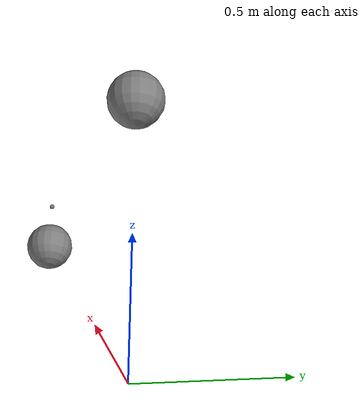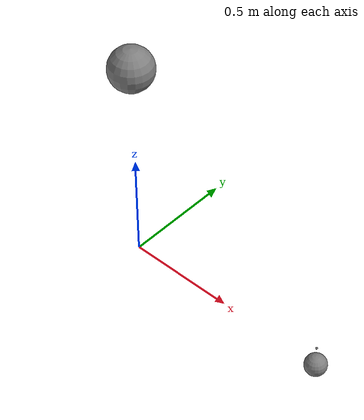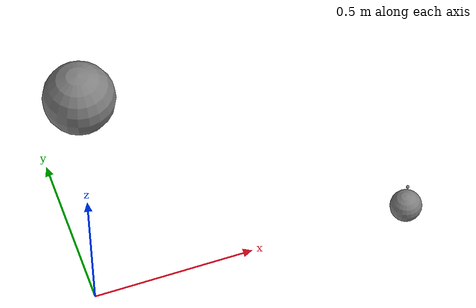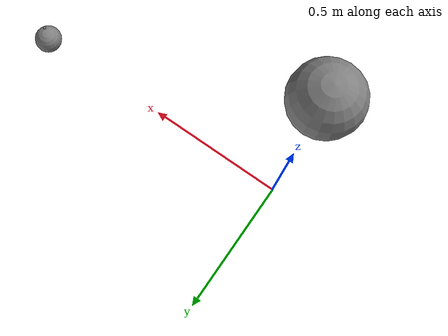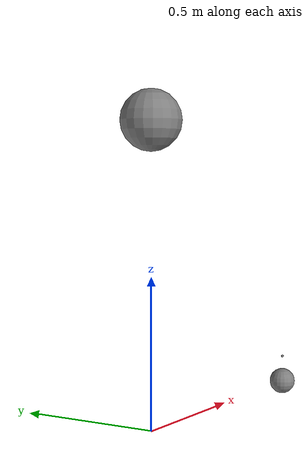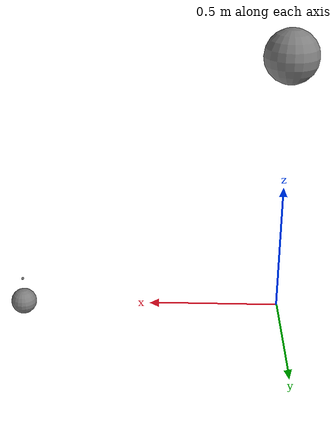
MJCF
<mujoco model="mocap_site">
        <option gravity="0 0 -9.81" timestep="0.002"/>
        <worldbody>
            <body name="target" mocap="true" pos="1 0 0">
                <geom type="sphere" size="0.05" mass="0.1"/>
                <site name="tip" pos="0 0 0.1"/>
            </body>
            <body name="link" pos="0 0 1">
                <joint name="hinge" type="hinge" axis="0 1 0"/>
                <geom type="sphere" size="0.1" mass="1.0"/>
            </body>
        </worldbody>
    </mujoco>
